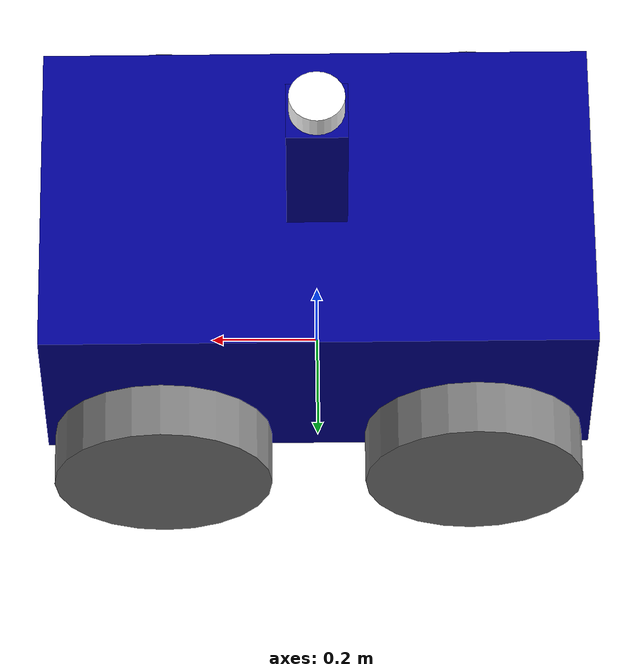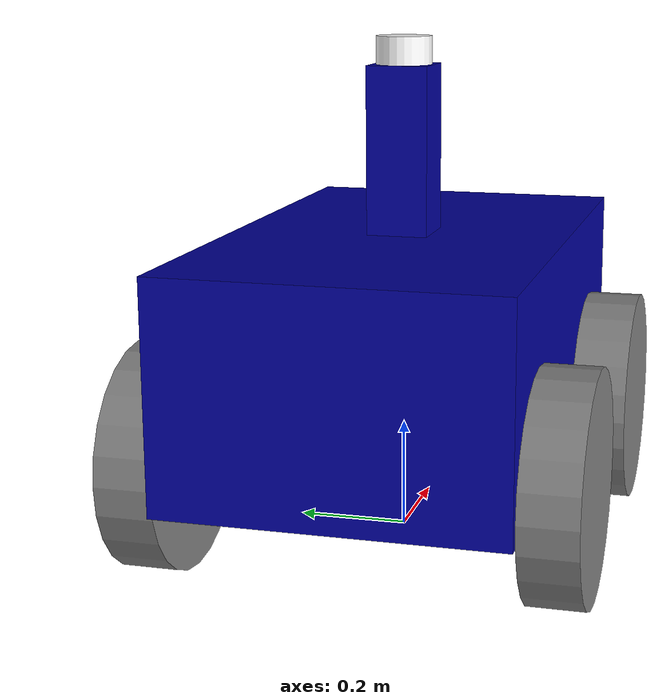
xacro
<?xml version="1.0"?>
<robot xmlns:xacro="http:/www.ros.org/wiki/xacro" name="my_robot">

    <material name="grey">
        <color rgba="0.5 0.5 0.5 1"/>
    </material>

    <material name="blue">
        <color rgba="0 0 0.6 1"/>
    </material>

    <material name="white">
        <color rgba="1 1 1 1"/>
    </material>

    <xacro:property name="base_length" value="1"/>
    <xacro:property name="base_width" value="0.6"/>
    <xacro:property name="base_height" value="0.4"/>
    <xacro:property name="base_mass" value="10"/>
    <xacro:property name="stand_height" value="0.3"/>
    <xacro:property name="stand_length" value="0.11"/>
    <xacro:property name="stand_width" value="0.11"/>
    <xacro:property name="stand_mass" value="3"/>
    <xacro:property name="wheel_radius" value="0.2"/>
    <xacro:property name="wheel_length" value="0.1"/>
    <xacro:property name="wheel_mass" value="2.5"/>
    <xacro:property name="camera_height" value="0.1"/>
    <xacro:property name="camera_length" value="0.1"/>
    <xacro:property name="camera_width" value="0.1"/>
    <xacro:property name="camera_mass" value="0.1"/>

    <joint name="stand_joint" type="fixed">
        <origin xyz="0 0 ${wheel_radius * 0.8 + base_height + stand_height/2}"/>
        <parent link="base_link"/>
        <child link="stand_link"/>
    </joint>

    <joint name="lidar_joint" type="fixed">
        <origin xyz="0 0 ${stand_height/2 + camera_height/4}"/>
        <parent link="stand_link"/>
        <child link="lidar_link"/>
    </joint>

    <joint name="wheel_fr_joint" type="continuous">
        <parent link="base_link"/>
        <child link="wheel_fr_link"/>
        <axis xyz="0 1 0"/>
        <origin xyz="${2*base_length/7} ${-base_width/2 - wheel_length/2} ${wheel_radius}" rpy="0 0 0"/>
        <limit effort="20000" velocity="1"/>
        <dynamics damping="1.0" friction="1.0"/>
    </joint>

    <joint name="wheel_fl_joint" type="continuous">
        <parent link="base_link"/>
        <child link="wheel_fl_link"/>
        <axis xyz="0 1 0"/>
        <origin xyz="${2*base_length/7} ${base_width/2 + wheel_length/2} ${wheel_radius}" rpy="0 0 0"/>
        <limit effort="20000" velocity="1"/>
        <dynamics damping="1.0" friction="1.0"/>
    </joint>

    <joint name="wheel_br_joint" type="continuous">
        <parent link="base_link"/>
        <child link="wheel_br_link"/>
        <axis xyz="0 1 0"/>
        <origin xyz="${-2*base_length/7} ${-base_width/2 - wheel_length/2} ${wheel_radius}" rpy="0 0 0"/>
        <limit effort="20000" velocity="1"/>
        <dynamics damping="1.0" friction="1.0"/>
    </joint>

    <joint name="wheel_bl_joint" type="continuous">
        <parent link="base_link"/>
        <child link="wheel_bl_link"/>
        <axis xyz="0 1 0"/>
        <origin xyz="${-2*base_length/7} ${base_width/2 + wheel_length/2} ${wheel_radius}" rpy="0 0 0"/>
        <limit effort="20000" velocity="1"/>
        <dynamics damping="1.0" friction="1.0"/>
    </joint>

    <link name="base_link">
        <visual>
            <geometry>
                <box size="${base_length} ${base_width} ${base_height}"/>
            </geometry>
            <origin xyz="0 0 ${wheel_radius * 0.8 + base_height/2}" rpy="0 0 0"/>
            <material name="blue"/>
        </visual>
        <collision>
            <geometry>
                <box size="${base_length} ${base_width} ${base_height}"/>
            </geometry>
            <origin xyz="0 0 ${wheel_radius * 0.8 + base_height/2}" rpy="0 0 0"/>
        </collision>
        <inertial>
            <origin xyz="0 0 ${wheel_radius * 0.8 + base_height/2}" rpy="0 0 0"/>
            <mass value="${base_mass}"/>
            <inertia ixx="${(base_mass/12)*(base_height * base_height + base_length * base_length)}" ixy="0" ixz="0" iyy="${(base_mass/12)*(base_height * base_height + base_width * base_width)}" iyz="0" izz="${(base_mass/12)*(base_length * base_length + base_width * base_width)}"/>
        </inertial>

        <sensor name="imu_sensor" type="imu">
            <always_on>1</always_on>
            <update_rate>2</update_rate>
            <visualize>true</visualize>
            <topic>imu</topic>
        </sensor>
    </link>

    <link name="stand_link">
        <visual>
            <geometry>
                <box size="${stand_length} ${stand_width} ${stand_height}"/>
            </geometry>
            <origin xyz="0 0 0" rpy="0 0 0"/>
            <material name="blue"/>
        </visual>
        <collision>
            <geometry>
                <box size="${stand_length} ${stand_width} ${stand_height}"/>
            </geometry>
            <origin xyz="0 0 0" rpy="0 0 0"/>
        </collision>
        <inertial>
            <origin xyz="0 0 0" rpy="0 0 0"/>
            <mass value="${stand_mass}"/>
            <inertia ixx="${(stand_mass/12)*(stand_height * stand_height + stand_length * stand_length)}" ixy="0" ixz="0" iyy="${(stand_mass/12)*(stand_height * stand_height + stand_width * stand_width)}" iyz="0" izz="${(stand_mass/12)*(stand_length * stand_length + stand_width * stand_width)}"/>
        </inertial>
    </link>

    <link name="lidar_link">
        <visual>
            <geometry>
                <cylinder radius="${camera_width/2}" length="${camera_length/2}"/>
            </geometry>
            <origin xyz="0 0 0" rpy="0 0 0"/>
            <material name="white"/>
        </visual>
        <collision>
            <geometry>
                <cylinder radius="${camera_width/2}" length="${camera_length/2}"/>
            </geometry>
            <origin xyz="0 0 0" rpy="0 0 0"/>
        </collision>
        <inertial>
            <origin xyz="0 0 0" rpy="0 0 0"/>
            <mass value="${camera_mass}"/>
            <inertia ixx="${(camera_mass/12)*(3 * camera_width/2 * camera_width/2 + camera_length/2 * camera_length/2)}" ixy="0" ixz="0" iyy="${(camera_mass/12)*(3 * camera_width/2 * camera_width/2 + camera_length/2 * camera_length/2)}" iyz="0" izz="${(camera_mass * camera_width/2 * camera_width/2) / 2}"/>
        </inertial>

        <sensor name='gpu_lidar' type='gpu_lidar'>"
            <pose relative_to='lidar_frame'>0 0 0 0 0 0</pose>
            <topic>lidar</topic>
            <update_rate>1</update_rate>
            <ray>
                <scan>
                    <horizontal>
                        <samples>2800</samples>
                        <resolution>1</resolution>
                        <min_angle>${-pi}</min_angle>
                        <max_angle>${pi}</max_angle>
                    </horizontal>
                    <vertical>
                        <samples>640</samples>
                        <resolution>1</resolution>
                        <min_angle>${-pi/4}</min_angle>
                        <max_angle>${-pi/16}</max_angle>
                    </vertical>
                </scan>
                <range>
                    <min>0.08</min>
                    <max>10.0</max>
                    <resolution>0.01</resolution>
                </range>
            </ray>
            <always_on>1</always_on>
            <visualize>true</visualize>
        </sensor>
    </link>

    <link name="wheel_fr_link">
        <visual>
            <geometry>
                <cylinder radius="${wheel_radius}" length="${wheel_length}"/>
            </geometry>
            <origin xyz="0 0 0" rpy="${pi/2} 0 0"/>
            <material name="grey"/>
        </visual>
        <collision>
            <geometry>
                <cylinder radius="${wheel_radius}" length="${wheel_length}"/>
            </geometry>
            <origin xyz="0 0 0" rpy="${pi/2} 0 0"/>
        </collision>
        <inertial>
            <origin xyz="0 0 0" rpy="${pi/2} 0 0"/>
            <mass value="${wheel_mass}"/>
            <inertia ixx="${(wheel_mass/12)*(3 * wheel_radius * wheel_radius + wheel_length * wheel_length)}" ixy="0" ixz="0" iyy="${(wheel_mass/12)*(3 * wheel_radius * wheel_radius + wheel_length * wheel_length)}" iyz="0" izz="${(wheel_mass * wheel_radius * wheel_radius) / 2}"/>
        </inertial>
    </link>

    <link name="wheel_fl_link">
        <visual>
            <geometry>
                <cylinder radius="${wheel_radius}" length="${wheel_length}"/>
            </geometry>
            <origin xyz="0 0 0" rpy="${pi/2} 0 0"/>
            <material name="grey"/>
        </visual>
        <collision>
            <geometry>
                <cylinder radius="${wheel_radius}" length="${wheel_length}"/>
            </geometry>
            <origin xyz="0 0 0" rpy="${pi/2} 0 0"/>
        </collision>
        <inertial>
            <origin xyz="0 0 0" rpy="${pi/2} 0 0"/>
            <mass value="${wheel_mass}"/>
            <inertia ixx="${(wheel_mass/12)*(3 * wheel_radius * wheel_radius + wheel_length * wheel_length)}" ixy="0" ixz="0" iyy="${(wheel_mass/12)*(3 * wheel_radius * wheel_radius + wheel_length * wheel_length)}" iyz="0" izz="${(wheel_mass * wheel_radius * wheel_radius) / 2}"/>
        </inertial>
    </link>

    <link name="wheel_br_link">
        <visual>
            <geometry>
                <cylinder radius="${wheel_radius}" length="${wheel_length}"/>
            </geometry>
            <origin xyz="0 0 0" rpy="${pi/2} 0 0"/>
            <material name="grey"/>
        </visual>
        <collision>
            <geometry>
                <cylinder radius="${wheel_radius}" length="${wheel_length}"/>
            </geometry>
            <origin xyz="0 0 0" rpy="${pi/2} 0 0"/>
        </collision>
        <inertial>
            <origin xyz="0 0 0" rpy="${pi/2} 0 0"/>
            <mass value="${wheel_mass}"/>
            <inertia ixx="${(wheel_mass/12)*(3 * wheel_radius * wheel_radius + wheel_length * wheel_length)}" ixy="0" ixz="0" iyy="${(wheel_mass/12)*(3 * wheel_radius * wheel_radius + wheel_length * wheel_length)}" iyz="0" izz="${(wheel_mass * wheel_radius * wheel_radius) / 2}"/>
        </inertial>
    </link>

    <link name="wheel_bl_link">
        <visual>
            <geometry>
                <cylinder radius="${wheel_radius}" length="${wheel_length}"/>
            </geometry>
            <origin xyz="0 0 0" rpy="${pi/2} 0 0"/>
            <material name="grey"/>
        </visual>
        <collision>
            <geometry>
                <cylinder radius="${wheel_radius}" length="${wheel_length}"/>
            </geometry>
            <origin xyz="0 0 0" rpy="${pi/2} 0 0"/>
        </collision>
        <inertial>
            <origin xyz="0 0 0" rpy="${pi/2} 0 0"/>
            <mass value="${wheel_mass}"/>
            <inertia ixx="${(wheel_mass/12)*(3 * wheel_radius * wheel_radius + wheel_length * wheel_length)}" ixy="0" ixz="0" iyy="${(wheel_mass/12)*(3 * wheel_radius * wheel_radius + wheel_length * wheel_length)}" iyz="0" izz="${(wheel_mass * wheel_radius * wheel_radius) / 2}"/>
        </inertial>
    </link>

</robot>
